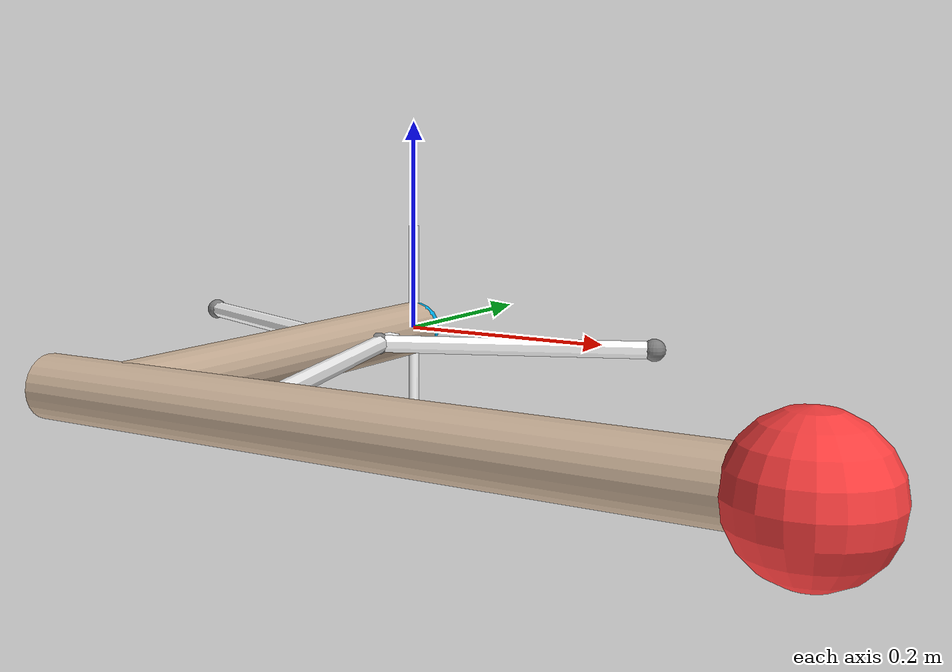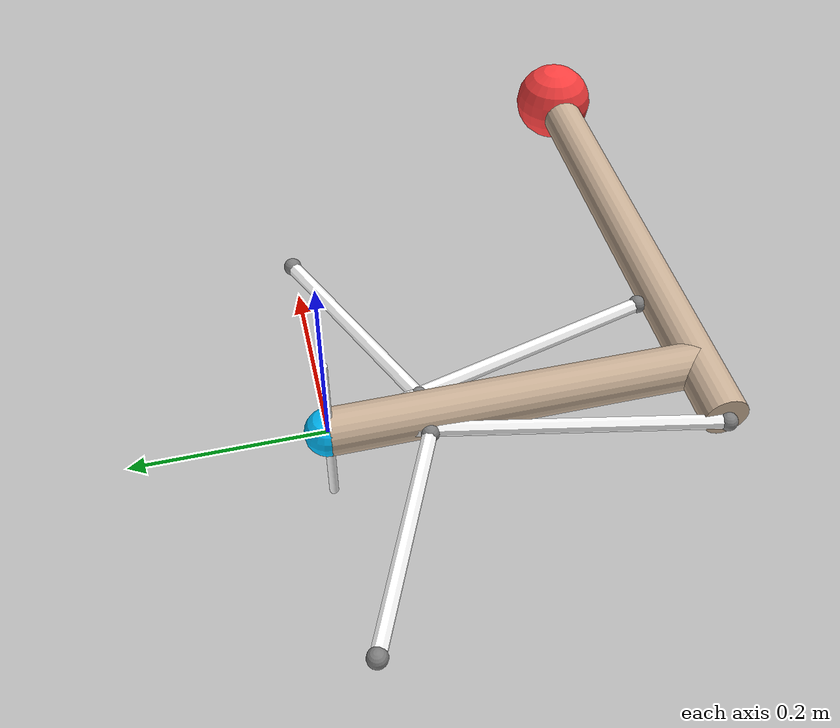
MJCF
<mujoco model="two-joint-limb">

  <visual>
    <map force="0.1" zfar="30" />
    <rgba haze="0 0 0 1" />
    <global offwidth="1920" offheight="1080" elevation="-90" azimuth="0" />
    <quality shadowsize="2048" />
    <headlight ambient="0.3 0.3 0.3" diffuse="0.8 0.8 0.8" specular="0.4 0.4 0.4"/>
  </visual>

  <asset>
    <!-- No skybox, no grid -->
    <material name="arm_mat" rgba="0.8 0.7 0.6 1" specular="0.1" shininess="0.1" reflectance="0"/>
    <material name="tendon_mat" rgba="1 1 1 1" specular="0" shininess="0" reflectance="0" emission="0.2"/>
  </asset>

  <default>
    <joint damping="0.1" />
    <muscle ctrllimited="true" ctrlrange="0 1" />
    <geom material="arm_mat" />
    <tendon material="tendon_mat" />
  </default>

  <worldbody>
    <!-- No extra lights, just headlight for soft shading -->
    <camera name="top" mode="fixed" pos="0 0 3.5" euler="0 0 0" fovy="30"/>
    <!-- No floor, so background is black -->

    <!-- TRUNK -->
    <body name="trunk" pos="0 0 0">

      <!-- tendon attachment sites -->
      <site name="deltoid1" pos=".25 0 0" size="0.01" />
      <site name="latissimus1" pos="-0.25 0 0" size="0.01" />

      <!-- UPPER ARM -->
      <body name="upper_arm" pos="0 0 0">

        <!-- shoulder -->
        <joint name="shoulder" type="hinge" axis="0 0 1" range="-60 60" />

        <!-- tendon attachment sites (proximal biceps/triceps moved to shoulder pin) -->
        <site name="deltoid2" pos="0.025 -.1 0" size="0.01" />
        <site name="latissimus2" pos="-0.025 -.1 0" size="0.01" />
        <site name="biceps1" pos="0 0 0" size="0.01" />
        <site name="triceps1" pos="0 0 0" size="0.01" />

        <!-- humerus -->
        <geom name="humerus" type="cylinder" size="0.025" fromto="0 0 0 0 -.4 0" />

        <!-- LOWER ARM -->
        <body name="lower_arm" pos="0 -0.4 0">

          <!-- elbow -->
          <joint name="elbow" type="hinge" axis="0 0 1" range="-60 60" />

          <!-- tendon attachment sites -->
          <site name="biceps2" pos=".1 .03 0" size="0.01" />
          <site name="triceps2" pos="-.08 0 0" size="0.01" />

          <!-- radius -->
          <geom name="radius" type="cylinder" size="0.025" fromto="-.075 0 0 .5 0 0" />

          <!-- HAND -->
          <body name="hand" pos="0.5 0 0">
            <geom name="hand" type="sphere" size="0.05" pos="0 0 0" rgba="1 .25 .25 1" />
            <site name="nail2" pos="0 0 0" />
          </body>
        </body>
      </body>
    </body>

    <!-- TARGET -->
    <body name="target" mocap="true" pos="0 0 0">
      <geom name="target" size=".025" type="sphere" contype="0" conaffinity="0"
        rgba="0 .75 1 1" />
    </body>

    <!-- NAIL -->
    <body name="nail" mocap="true" pos="0 0 0">
      <geom name="nail" type="cylinder" size=".005" fromto="0 0 -.1 0 0 .1" contype="0"
        conaffinity="0" rgba="1 1 1 1" />
      <site name="nail1" pos="0 0 0" />
    </body>
  </worldbody>

  <equality>
    <connect name="nail_eq" active="false" site1="nail1" site2="nail2" />
  </equality>

  <tendon>
    <spatial name="deltoid_tendon" limited="true" range="0 1" width="0.008" rgba="1 0 1 1">
      <site site="deltoid1" />
      <site site="deltoid2" />
    </spatial>

    <spatial name="latissimus_tendon" limited="true" range="0 1" width="0.008" rgba="1 1 0 1">
      <site site="latissimus1" />
      <site site="latissimus2" />
    </spatial>

    <spatial name="biceps_tendon" limited="true" range="0 .485" width="0.008" rgba="1 0 0 1">
      <site site="biceps1" />
      <geom geom="humerus" />
      <site site="biceps2" />
    </spatial>

    <spatial name="triceps_tendon" limited="true" range="0 .5" width="0.008" rgba="0 1 0 1">
      <site site="triceps1" />
      <geom geom="radius" />
      <site site="triceps2" />
    </spatial>
  </tendon>

  <actuator>
    <muscle name="deltoid" tendon="deltoid_tendon" ctrlrange="0 1" force="100" timeconst=".01 .04" />
    <muscle name="latissimus" tendon="latissimus_tendon" ctrlrange="0 1" force="100"
      timeconst=".01 .04" />
    <muscle name="biceps" tendon="biceps_tendon" ctrlrange="0 1" force="100" timeconst=".01 .04" />
    <muscle name="triceps" tendon="triceps_tendon" ctrlrange="0 1" force="100" timeconst=".01 .04" />
  </actuator>

  <sensor>
    <actuatorpos name="deltoid_length" actuator="deltoid" />
    <actuatorpos name="latissimus_length" actuator="latissimus" />
    <actuatorpos name="biceps_length" actuator="biceps" />
    <actuatorpos name="triceps_length" actuator="triceps" />
    <actuatorvel name="deltoid_velocity" actuator="deltoid" />
    <actuatorvel name="latissimus_velocity" actuator="latissimus" />
    <actuatorvel name="biceps_velocity" actuator="biceps" />
    <actuatorvel name="triceps_velocity" actuator="triceps" />
    <actuatorfrc name="deltoid_force" actuator="deltoid" />
    <actuatorfrc name="latissimus_force" actuator="latissimus" />
    <actuatorfrc name="biceps_force" actuator="biceps" />
    <actuatorfrc name="triceps_force" actuator="triceps" />
  </sensor>

</mujoco>
